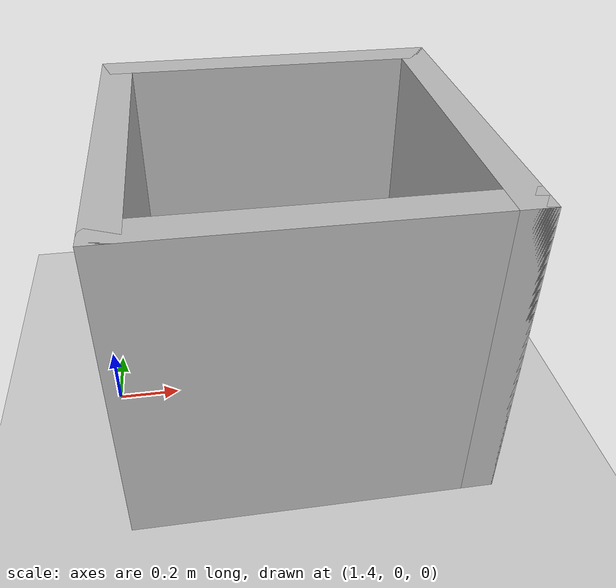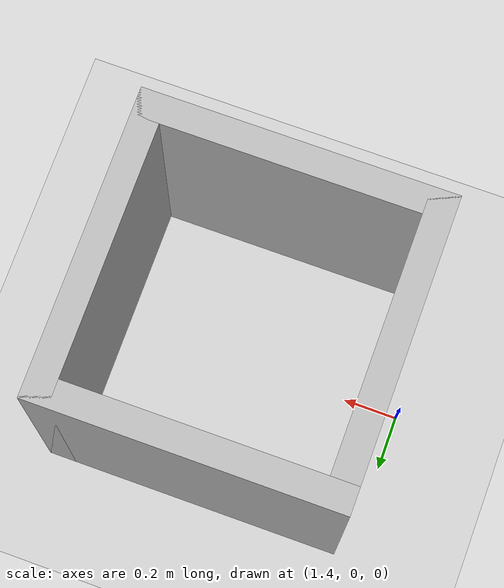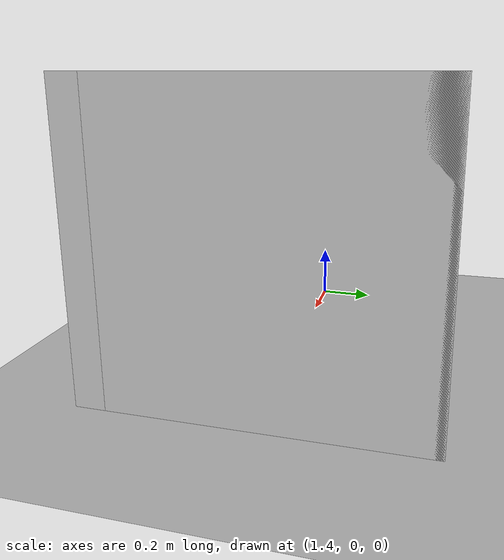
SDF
<sdf version="1.4">
  <world name="default">

    <scene>
      <ambient>0.4 0.4 0.4 1</ambient>
      <background>0.7 0.7 0.7 1</background>
      <shadows>true</shadows>
    </scene>

    <!-- A global light source -->
    <include>
      <uri>model://sun</uri>
    </include>

    <!-- A ground plane -->
    <include>
      <uri>model://ground_plane</uri>
    </include>

    <!-- Arena 1 -->
    <include>
      <uri>model://arena_1</uri>
        <pose> 2 0 0 0 0 0</pose>
    </include>

    <physics type="ode">
      <real_time_update_rate>1000.0</real_time_update_rate>
      <max_step_size>0.001</max_step_size>
      <real_time_factor>1</real_time_factor>
      <ode>
        <solver>
          <type>quick</type>
          <iters>150</iters>
          <precon_iters>0</precon_iters>
          <sor>1.400000</sor>
          <use_dynamic_moi_rescaling>1</use_dynamic_moi_rescaling>
        </solver>
        <constraints>
          <cfm>0.00001</cfm>
          <erp>0.2</erp>
          <contact_max_correcting_vel>2000.000000</contact_max_correcting_vel>
          <contact_surface_layer>0.01000</contact_surface_layer>
        </constraints>
      </ode>
    </physics>
  </world>

</sdf>

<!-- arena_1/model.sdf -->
<sdf version="1.5">
<model name="arena_1m">
    <static>true</static>
    <link name="north_wall">
      <pose>0 0.5 0.5 0 0 0</pose>
      <visual name="visual">
        <geometry>
          <box>
            <size>1.1 0.1 1</size>
          </box>
        </geometry>
      </visual>
      <collision name="collision">
        <geometry>
          <box>
            <size>1.1 0.1 1</size>
          </box>
        </geometry>
      </collision>
    </link>
    <link name="south_wall">
      <pose>0 -0.5 0.5 0 0 0</pose>
      <visual name="visual">
        <geometry>
          <box>
            <size>1.1 0.1 1</size>
          </box>
        </geometry>
      </visual>
      <collision name="collision">
        <geometry>
          <box>
            <size>1.1 0.1 1</size>
          </box>
        </geometry>
      </collision>
    </link>
    <link name="east_wall">
      <pose>0.5 0 0.5 0 0 0</pose>
      <visual name="visual">
        <geometry>
          <box>
            <size>0.1 1.1 1</size>
          </box>
        </geometry>
      </visual>
      <collision name="collision">
        <geometry>
          <box>
            <size>0.1 1.1 1</size>
          </box>
        </geometry>
      </collision>
    </link>
    <link name="west_wall">
      <pose>-0.5 0 0.5 0 0 0</pose>
      <visual name="visual">
        <geometry>
          <box>
            <size>0.1 1.1 1</size>
          </box>
        </geometry>
      </visual>
      <collision name="collision">
        <geometry>
          <box>
            <size>0.1 1.1 1</size>
          </box>
        </geometry>
      </collision>
    </link>
  </model>
</sdf>
